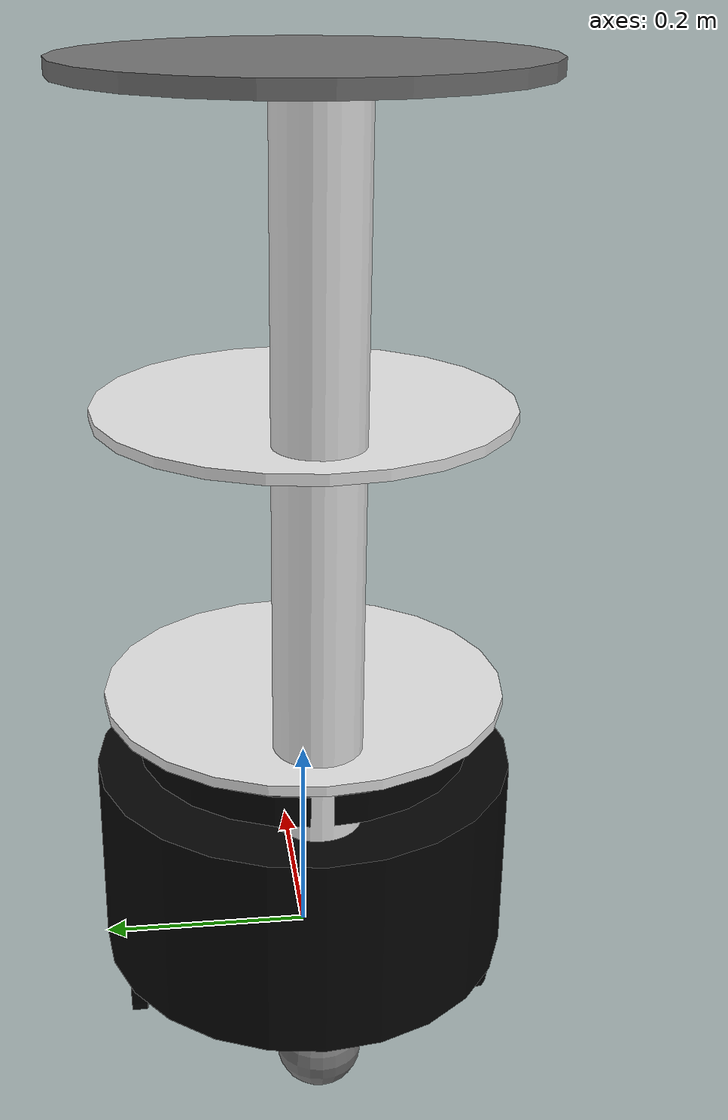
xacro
<robot xmlns:xacro="http://www.ros.org/wiki/xacro" name="$(arg robot_name)">
  <xacro:arg name="robot_name" default="servi_1"/>
  <xacro:property name="robot_name" value="$(arg robot_name)"/>

  <!-- ====================== RViz 표시용 재질 ====================== -->
  <material name="black">
    <color rgba="0.02 0.02 0.02 1.0"/>
  </material>

  <material name="white">
    <color rgba="0.9 0.9 0.9 1.0"/>
  </material>

  <material name="gray">
    <color rgba="0.45 0.45 0.45 1.0"/>
  </material>

  <material name="orange">
    <color rgba="1.0 0.45 0.0 1.0"/>
  </material>

  <!-- ====================== Gazebo 표시용 재질 ====================== -->
  <gazebo reference="base_link"><material>Gazebo/Black</material></gazebo>
  <gazebo reference="main_spine_link"><material>Gazebo/White</material></gazebo>
  <gazebo reference="tray_top_link"><material>Gazebo/Grey</material></gazebo>
  <gazebo reference="tray_bottom_link"><material>Gazebo/White</material></gazebo>
  <gazebo reference="tray_middle_link"><material>Gazebo/White</material></gazebo>
  <gazebo reference="laser_frame"><material>Gazebo/Orange</material></gazebo>
  <gazebo reference="left_wheel"><material>Gazebo/Black</material></gazebo>
  <gazebo reference="right_wheel"><material>Gazebo/Black</material></gazebo>
  <gazebo reference="front_caster"><material>Gazebo/Grey</material></gazebo>
  <gazebo reference="back_caster"><material>Gazebo/Grey</material></gazebo>
  <gazebo reference="lidar_bracket_link"><material>Gazebo/Black</material></gazebo>
  <gazebo reference="lidar_room_wall_link"><material>Gazebo/Black</material></gazebo>
  <gazebo reference="spine_top_curve_link"><material>Gazebo/White</material></gazebo>

  <link name="base_footprint"/>
  <joint name="base_footprint_joint" type="fixed">
      <parent link="base_footprint"/>
      <child link="base_link"/>
      <origin xyz="0 0 0" rpy="0 0 0"/>
  </joint>

  <link name="base_link">
      <inertial>
          <origin xyz="0 0 0.1" rpy="0 0 0"/>
          <mass value="50.0"/>
          <inertia ixx="0.5" ixy="0.0" ixz="0.0" iyy="0.5" iyz="0.0" izz="0.5"/>
      </inertial>
      <visual>
          <origin xyz="0 0 0.1" rpy="0 0 0"/>
          <geometry><cylinder radius="0.2" length="0.2"/></geometry>
		  <material name="black"/>
      </visual>
      <collision>
          <origin xyz="0 0 0.1" rpy="0 0 0"/>
          <geometry><cylinder radius="0.2" length="0.2"/></geometry>
      </collision>
  </link>

  <link name="lidar_room_wall_link">
      <visual>
          <geometry><cylinder radius="0.16" length="0.03"/></geometry>
		  <material name="black"/>
      </visual>
  </link>
  <joint name="lidar_room_wall_joint" type="fixed">
      <parent link="base_link"/><child link="lidar_room_wall_link"/>
      <origin xyz="0 0 0.23" rpy="0 0 0"/>
  </joint>

  <link name="main_spine_link">
      <visual>
          <geometry><cylinder radius="0.04" length="0.83"/></geometry>
		  <material name="white"/>
      </visual>
  </link>
  <joint name="main_spine_joint" type="fixed">
      <parent link="base_link"/><child link="main_spine_link"/>
      <origin xyz="-0.12 0 0.425" rpy="0 0 0"/>
  </joint>

  <link name="spine_top_curve_link">
      <visual>
          <geometry><box size="0.05 0.07 0.05"/></geometry>
		  <material name="black"/>
      </visual>
  </link>
  <joint name="spine_top_curve_joint" type="fixed">
      <parent link="base_link"/><child link="spine_top_curve_link"/>
      <origin xyz="-0.1 0 0.8" rpy="0 0 0"/>
  </joint>

  <link name="tray_bottom_link">
      <visual>
          <geometry><cylinder radius="0.19" length="0.01"/></geometry>
		  <material name="white"/>
      </visual>
  </link>
  <joint name="tray_bottom_joint" type="fixed">
      <parent link="base_link"/><child link="tray_bottom_link"/>
      <origin xyz="0 0 0.27" rpy="0 0 0"/>
  </joint>

  <link name="tray_middle_link">
      <visual>
          <geometry><cylinder radius="0.19" length="0.01"/></geometry>
		  <material name="white"/>
      </visual>
  </link>
  <joint name="tray_middle_joint" type="fixed">
      <parent link="base_link"/><child link="tray_middle_link"/>
      <origin xyz="0 0 0.55" rpy="0 0 0"/>
  </joint>

  <link name="tray_top_link">
      <visual>
          <geometry><cylinder radius="0.21" length="0.015"/></geometry>
		  <material name="gray"/>
      </visual>
  </link>
  <joint name="tray_top_joint" type="fixed">
      <parent link="main_spine_link"/>
      <child link="tray_top_link"/>
      <origin xyz="0.12 0 0.415" rpy="0 0 0"/>
  </joint>

  <!-- 구동 바퀴와 보조 캐스터 -->
  <link name="left_wheel">
      <inertial>
          <mass value="2.0"/>
          <geometry><cylinder radius="0.08" length="0.015"/></geometry>
          <inertia ixx="0.003" ixy="0" ixz="0" iyy="0.003" iyz="0" izz="0.006"/>
      </inertial>
      <visual>
          <origin xyz="0 0 0" rpy="1.5708 0 0"/>
          <geometry><cylinder radius="0.08" length="0.015"/></geometry>
		  <material name="black"/>
      </visual>
      <collision>
          <origin xyz="0 0 0" rpy="1.5708 0 0"/>
          <geometry><cylinder radius="0.08" length="0.015"/></geometry>
      </collision>
  </link>
  <joint name="left_wheel_joint" type="continuous">
      <parent link="base_link"/><child link="left_wheel"/>
      <origin xyz="0 0.17 0.0" rpy="0 0 0"/>
      <axis xyz="0 1 0"/>
  </joint>

  <link name="right_wheel">
      <inertial>
          <mass value="2.0"/>
          <geometry><cylinder radius="0.08" length="0.015"/></geometry>
          <inertia ixx="0.003" ixy="0" ixz="0" iyy="0.003" iyz="0" izz="0.006"/>
      </inertial>
      <visual>
          <origin xyz="0 0 0" rpy="1.5708 0 0"/>
          <geometry><cylinder radius="0.08" length="0.015"/></geometry>
		  <material name="black"/>
      </visual>
      <collision>
          <origin xyz="0 0 0" rpy="1.5708 0 0"/>
          <geometry><cylinder radius="0.08" length="0.015"/></geometry>
      </collision>
  </link>
  <joint name="right_wheel_joint" type="continuous">
      <parent link="base_link"/><child link="right_wheel"/>
      <origin xyz="0 -0.17 0.0" rpy="0 0 0"/>
      <axis xyz="0 1 0"/>
  </joint>

  <link name="front_caster">
      <inertial>
          <mass value="0.5"/>
          <geometry><sphere radius="0.04"/></geometry>
          <inertia ixx="0.0003" ixy="0" ixz="0" iyy="0.0003" iyz="0" izz="0.0003"/>
      </inertial>
      <visual>
          <geometry><sphere radius="0.04"/></geometry>
		  <material name="gray"/>
      </visual>
      <collision>
          <geometry><sphere radius="0.04"/></geometry>
      </collision>
  </link>
  <joint name="front_caster_joint" type="fixed">
      <parent link="base_link"/><child link="front_caster"/>
      <origin xyz="0.14 0 -0.04" rpy="0 0 0"/>
  </joint>

  <link name="back_caster">
      <inertial>
          <mass value="0.5"/>
          <geometry><sphere radius="0.04"/></geometry>
          <inertia ixx="0.0003" ixy="0" ixz="0" iyy="0.0003" iyz="0" izz="0.0003"/>
      </inertial>
      <visual>
          <geometry><sphere radius="0.04"/></geometry>
		  <material name="gray"/>
      </visual>
      <collision>
          <geometry><sphere radius="0.04"/></geometry>
      </collision>
  </link>
  <joint name="back_caster_joint" type="fixed">
      <parent link="base_link"/><child link="back_caster"/>
      <origin xyz="-0.14 0 -0.04" rpy="0 0 0"/>
  </joint>

  <link name="lidar_bracket_link">
      <visual>
          <geometry><box size="0.06 0.05 0.05"/></geometry>
		  <material name="black"/>
      </visual>
  </link>
  <joint name="lidar_bracket_joint" type="fixed">
      <parent link="base_link"/><child link="lidar_bracket_link"/>
      <origin xyz="0.19 0 0.22" rpy="0 0 0"/>
  </joint>

  <link name="laser_frame">
      <visual>
          <geometry><cylinder radius="0.025" length="0.02"/></geometry>
		  <material name="orange"/>
      </visual>
  </link>
  <joint name="laser_joint" type="fixed">
      <parent link="base_link"/><child link="laser_frame"/>
      <origin xyz="0.2 0 0.25" rpy="0 0 0"/>
  </joint>

  <!-- ====================== Gazebo와 ROS 2 연동 플러그인 ====================== -->
  <gazebo>
      <plugin name="${robot_name}_diff_drive" filename="libgazebo_ros_diff_drive.so">
          <ros>
              <namespace>/${robot_name}</namespace>
              <remapping>cmd_vel:=cmd_vel</remapping>
              <remapping>odom:=odom</remapping>
              <remapping>/tf:=tf</remapping>
              <remapping>/tf_static:=tf_static</remapping>
          </ros>
          <update_rate>50</update_rate>
          <left_joint>left_wheel_joint</left_joint>
          <right_joint>right_wheel_joint</right_joint>
          <wheel_separation>0.34</wheel_separation>
          <wheel_diameter>0.16</wheel_diameter>
          <max_wheel_torque>200</max_wheel_torque>
          <max_wheel_acceleration>1.0</max_wheel_acceleration>
          <odometry_frame>${robot_name}/odom</odometry_frame>
          <robot_base_frame>${robot_name}/base_footprint</robot_base_frame>
          <publish_odom>true</publish_odom>
          <publish_odom_tf>true</publish_odom_tf>
          <publish_wheel_tf>true</publish_wheel_tf>
      </plugin>

      <plugin name="${robot_name}_joint_state" filename="libgazebo_ros_joint_state_publisher.so">
          <ros>
              <namespace>/${robot_name}</namespace>
              <remapping>~/out:=joint_states</remapping>
          </ros>
          <update_rate>30</update_rate>
          <joint_name>left_wheel_joint</joint_name>
          <joint_name>right_wheel_joint</joint_name>
      </plugin>
  </gazebo>

  <gazebo reference="laser_frame">
      <sensor name="${robot_name}_lidar" type="ray">
          <pose>0 0 0 0 0 0</pose>
          <visualize>true</visualize>
          <update_rate>10</update_rate>
          <ray>
              <scan>
                  <horizontal>
                      <samples>400</samples>
                      <resolution>1</resolution>
                      <min_angle>-1.7453</min_angle>
                      <max_angle>1.7453</max_angle>
                  </horizontal>
              </scan>
              <range>
                  <min>0.12</min>
                  <max>12.0</max>
                  <resolution>0.01</resolution>
              </range>
          </ray>
          <plugin name="${robot_name}_laser_controller" filename="libgazebo_ros_ray_sensor.so">
              <ros>
                  <namespace>/${robot_name}</namespace>
                  <argument>~/out:=scan</argument>
                  <remapping>/tf:=tf</remapping>
                  <remapping>/tf_static:=tf_static</remapping>
              </ros>
              <output_type>sensor_msgs/LaserScan</output_type>
              <frame_name>${robot_name}/laser_frame</frame_name>
          </plugin>
      </sensor>
  </gazebo>

  <gazebo reference="front_caster"><mu1>0.0</mu1><mu2>0.0</mu2></gazebo>
  <gazebo reference="back_caster"><mu1>0.0</mu1><mu2>0.0</mu2></gazebo>

</robot>
